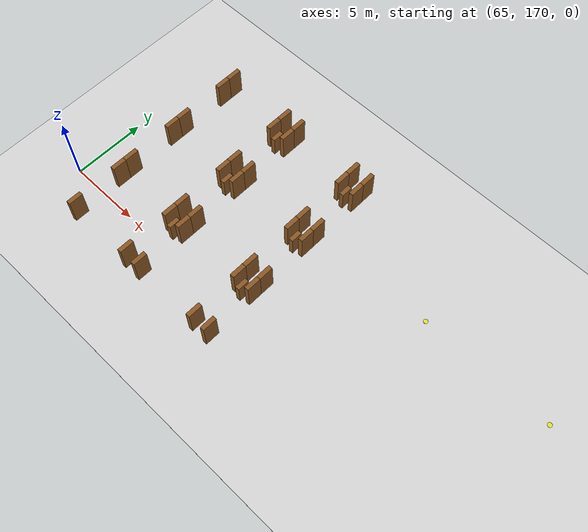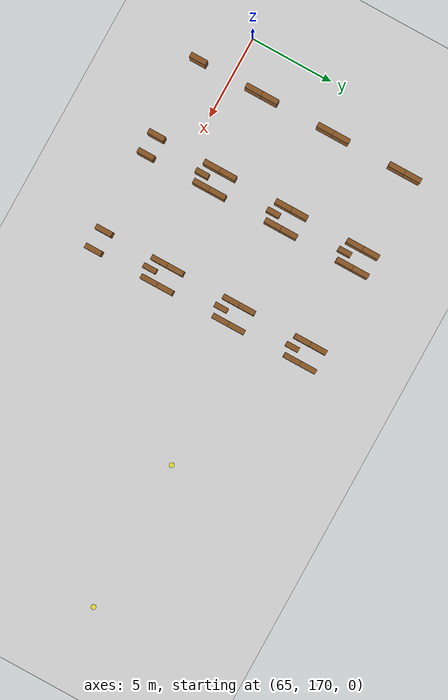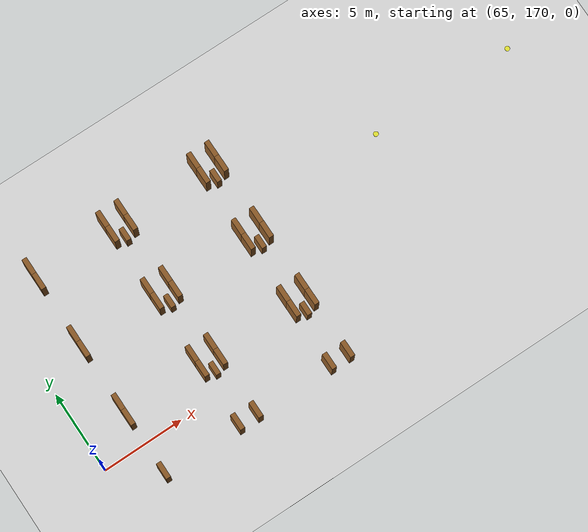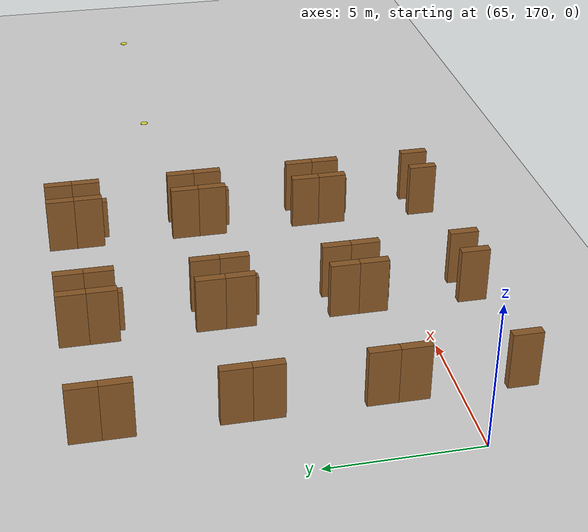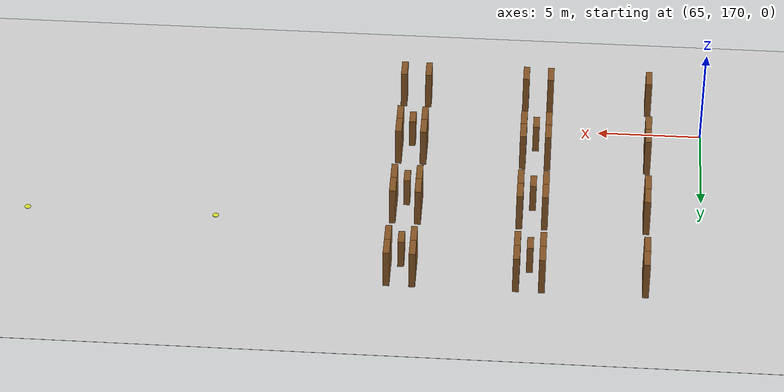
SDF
<sdf version="1.9">
 <world name="realistic_warehouse_150x200m">
  <model name="ground_plane">
   <static>true</static>
   <pose>68.5 102.0 0 0 0 0</pose>
   <link name="ground_link">
    <visual name="ground_visual">
     <geometry><box><size>127.0 194.0 0.01</size></box></geometry>
     <material><ambient>0.85 0.85 0.85 1.0</ambient><diffuse>0.85 0.85 0.85 1.0</diffuse></material>
    </visual>
    <collision name="ground_visual_collision">
     <geometry><box><size>127.0 194.0 0.01</size></box></geometry>
    </collision>
    <collision name="ground_collision">
     <geometry><plane><normal>0 0 1</normal><size>127.0 194.0</size></plane></geometry>
    </collision>
   </link>
  </model>
  <model name="rack_Zone_B_A2_S1_329">
   <static>true</static>
   <pose>67.6 168.0 1.0 0 0 0</pose>
   <link name="rack_Zone_B_A2_S1_329_link">
    <visual name="rack_Zone_B_A2_S1_329_vis">
     <geometry><box><size>0.3 1.0 2.0</size></box></geometry>
     <material><ambient>0.55 0.35 0.15 1.0</ambient><diffuse>0.55 0.35 0.15 1.0</diffuse></material>
    </visual>
    <collision name="rack_Zone_B_A2_S1_329_vis_collision">
     <geometry><box><size>0.3 1.0 2.0</size></box></geometry>
    </collision>
   </link>
  </model>
  <model name="rack_Zone_B_A2_S2_333">
   <static>true</static>
   <pose>67.6 171.5 1.0 0 0 0</pose>
   <link name="rack_Zone_B_A2_S2_333_link">
    <visual name="rack_Zone_B_A2_S2_333_vis">
     <geometry><box><size>0.3 1.0 2.0</size></box></geometry>
     <material><ambient>0.55 0.35 0.15 1.0</ambient><diffuse>0.55 0.35 0.15 1.0</diffuse></material>
    </visual>
    <collision name="rack_Zone_B_A2_S2_333_vis_collision">
     <geometry><box><size>0.3 1.0 2.0</size></box></geometry>
    </collision>
   </link>
  </model>
  <model name="rack_Zone_B_A2_S2_334">
   <static>true</static>
   <pose>67.6 172.5 1.0 0 0 0</pose>
   <link name="rack_Zone_B_A2_S2_334_link">
    <visual name="rack_Zone_B_A2_S2_334_vis">
     <geometry><box><size>0.3 1.0 2.0</size></box></geometry>
     <material><ambient>0.55 0.35 0.15 1.0</ambient><diffuse>0.55 0.35 0.15 1.0</diffuse></material>
    </visual>
    <collision name="rack_Zone_B_A2_S2_334_vis_collision">
     <geometry><box><size>0.3 1.0 2.0</size></box></geometry>
    </collision>
   </link>
  </model>
  <model name="rack_Zone_B_A2_S3_338">
   <static>true</static>
   <pose>67.6 176.0 1.0 0 0 0</pose>
   <link name="rack_Zone_B_A2_S3_338_link">
    <visual name="rack_Zone_B_A2_S3_338_vis">
     <geometry><box><size>0.3 1.0 2.0</size></box></geometry>
     <material><ambient>0.55 0.35 0.15 1.0</ambient><diffuse>0.55 0.35 0.15 1.0</diffuse></material>
    </visual>
    <collision name="rack_Zone_B_A2_S3_338_vis_collision">
     <geometry><box><size>0.3 1.0 2.0</size></box></geometry>
    </collision>
   </link>
  </model>
  <model name="rack_Zone_B_A2_S3_339">
   <static>true</static>
   <pose>67.6 177.0 1.0 0 0 0</pose>
   <link name="rack_Zone_B_A2_S3_339_link">
    <visual name="rack_Zone_B_A2_S3_339_vis">
     <geometry><box><size>0.3 1.0 2.0</size></box></geometry>
     <material><ambient>0.55 0.35 0.15 1.0</ambient><diffuse>0.55 0.35 0.15 1.0</diffuse></material>
    </visual>
    <collision name="rack_Zone_B_A2_S3_339_vis_collision">
     <geometry><box><size>0.3 1.0 2.0</size></box></geometry>
    </collision>
   </link>
  </model>
  <model name="rack_Zone_B_A2_S4_343">
   <static>true</static>
   <pose>67.6 180.5 1.0 0 0 0</pose>
   <link name="rack_Zone_B_A2_S4_343_link">
    <visual name="rack_Zone_B_A2_S4_343_vis">
     <geometry><box><size>0.3 1.0 2.0</size></box></geometry>
     <material><ambient>0.55 0.35 0.15 1.0</ambient><diffuse>0.55 0.35 0.15 1.0</diffuse></material>
    </visual>
    <collision name="rack_Zone_B_A2_S4_343_vis_collision">
     <geometry><box><size>0.3 1.0 2.0</size></box></geometry>
    </collision>
   </link>
  </model>
  <model name="rack_Zone_B_A2_S4_344">
   <static>true</static>
   <pose>67.6 181.5 1.0 0 0 0</pose>
   <link name="rack_Zone_B_A2_S4_344_link">
    <visual name="rack_Zone_B_A2_S4_344_vis">
     <geometry><box><size>0.3 1.0 2.0</size></box></geometry>
     <material><ambient>0.55 0.35 0.15 1.0</ambient><diffuse>0.55 0.35 0.15 1.0</diffuse></material>
    </visual>
    <collision name="rack_Zone_B_A2_S4_344_vis_collision">
     <geometry><box><size>0.3 1.0 2.0</size></box></geometry>
    </collision>
   </link>
  </model>
  <model name="rack_Zone_B_A3_S1_371">
   <static>true</static>
   <pose>72.4 168.0 1.0 0 0 0</pose>
   <link name="rack_Zone_B_A3_S1_371_link">
    <visual name="rack_Zone_B_A3_S1_371_vis">
     <geometry><box><size>0.3 1.0 2.0</size></box></geometry>
     <material><ambient>0.55 0.35 0.15 1.0</ambient><diffuse>0.55 0.35 0.15 1.0</diffuse></material>
    </visual>
    <collision name="rack_Zone_B_A3_S1_371_vis_collision">
     <geometry><box><size>0.3 1.0 2.0</size></box></geometry>
    </collision>
   </link>
  </model>
  <model name="rack_Zone_B_A3_S1_373">
   <static>true</static>
   <pose>73.6 168.0 1.0 0 0 0</pose>
   <link name="rack_Zone_B_A3_S1_373_link">
    <visual name="rack_Zone_B_A3_S1_373_vis">
     <geometry><box><size>0.3 1.0 2.0</size></box></geometry>
     <material><ambient>0.55 0.35 0.15 1.0</ambient><diffuse>0.55 0.35 0.15 1.0</diffuse></material>
    </visual>
    <collision name="rack_Zone_B_A3_S1_373_vis_collision">
     <geometry><box><size>0.3 1.0 2.0</size></box></geometry>
    </collision>
   </link>
  </model>
  <model name="rack_Zone_B_A3_S2_375">
   <static>true</static>
   <pose>72.4 171.5 1.0 0 0 0</pose>
   <link name="rack_Zone_B_A3_S2_375_link">
    <visual name="rack_Zone_B_A3_S2_375_vis">
     <geometry><box><size>0.3 1.0 2.0</size></box></geometry>
     <material><ambient>0.55 0.35 0.15 1.0</ambient><diffuse>0.55 0.35 0.15 1.0</diffuse></material>
    </visual>
    <collision name="rack_Zone_B_A3_S2_375_vis_collision">
     <geometry><box><size>0.3 1.0 2.0</size></box></geometry>
    </collision>
   </link>
  </model>
  <model name="rack_Zone_B_A3_S2_376">
   <static>true</static>
   <pose>72.4 172.5 1.0 0 0 0</pose>
   <link name="rack_Zone_B_A3_S2_376_link">
    <visual name="rack_Zone_B_A3_S2_376_vis">
     <geometry><box><size>0.3 1.0 2.0</size></box></geometry>
     <material><ambient>0.55 0.35 0.15 1.0</ambient><diffuse>0.55 0.35 0.15 1.0</diffuse></material>
    </visual>
    <collision name="rack_Zone_B_A3_S2_376_vis_collision">
     <geometry><box><size>0.3 1.0 2.0</size></box></geometry>
    </collision>
   </link>
  </model>
  <model name="rack_Zone_B_A3_S2_377">
   <static>true</static>
   <pose>73.6 171.5 1.0 0 0 0</pose>
   <link name="rack_Zone_B_A3_S2_377_link">
    <visual name="rack_Zone_B_A3_S2_377_vis">
     <geometry><box><size>0.3 1.0 2.0</size></box></geometry>
     <material><ambient>0.55 0.35 0.15 1.0</ambient><diffuse>0.55 0.35 0.15 1.0</diffuse></material>
    </visual>
    <collision name="rack_Zone_B_A3_S2_377_vis_collision">
     <geometry><box><size>0.3 1.0 2.0</size></box></geometry>
    </collision>
   </link>
  </model>
  <model name="rack_Zone_B_A3_S2_378">
   <static>true</static>
   <pose>73.6 172.5 1.0 0 0 0</pose>
   <link name="rack_Zone_B_A3_S2_378_link">
    <visual name="rack_Zone_B_A3_S2_378_vis">
     <geometry><box><size>0.3 1.0 2.0</size></box></geometry>
     <material><ambient>0.55 0.35 0.15 1.0</ambient><diffuse>0.55 0.35 0.15 1.0</diffuse></material>
    </visual>
    <collision name="rack_Zone_B_A3_S2_378_vis_collision">
     <geometry><box><size>0.3 1.0 2.0</size></box></geometry>
    </collision>
   </link>
  </model>
  <model name="rack_Zone_B_A3_S2_379">
   <static>true</static>
   <pose>73.0 171.2 0.75 0 0 0</pose>
   <link name="rack_Zone_B_A3_S2_379_link">
    <visual name="rack_Zone_B_A3_S2_379_vis">
     <geometry><box><size>0.3 0.8 1.5</size></box></geometry>
     <material><ambient>0.55 0.35 0.15 1.0</ambient><diffuse>0.55 0.35 0.15 1.0</diffuse></material>
    </visual>
    <collision name="rack_Zone_B_A3_S2_379_vis_collision">
     <geometry><box><size>0.3 0.8 1.5</size></box></geometry>
    </collision>
   </link>
  </model>
  <model name="rack_Zone_B_A3_S3_380">
   <static>true</static>
   <pose>72.4 176.0 1.0 0 0 0</pose>
   <link name="rack_Zone_B_A3_S3_380_link">
    <visual name="rack_Zone_B_A3_S3_380_vis">
     <geometry><box><size>0.3 1.0 2.0</size></box></geometry>
     <material><ambient>0.55 0.35 0.15 1.0</ambient><diffuse>0.55 0.35 0.15 1.0</diffuse></material>
    </visual>
    <collision name="rack_Zone_B_A3_S3_380_vis_collision">
     <geometry><box><size>0.3 1.0 2.0</size></box></geometry>
    </collision>
   </link>
  </model>
  <model name="rack_Zone_B_A3_S3_381">
   <static>true</static>
   <pose>72.4 177.0 1.0 0 0 0</pose>
   <link name="rack_Zone_B_A3_S3_381_link">
    <visual name="rack_Zone_B_A3_S3_381_vis">
     <geometry><box><size>0.3 1.0 2.0</size></box></geometry>
     <material><ambient>0.55 0.35 0.15 1.0</ambient><diffuse>0.55 0.35 0.15 1.0</diffuse></material>
    </visual>
    <collision name="rack_Zone_B_A3_S3_381_vis_collision">
     <geometry><box><size>0.3 1.0 2.0</size></box></geometry>
    </collision>
   </link>
  </model>
  <model name="rack_Zone_B_A3_S3_382">
   <static>true</static>
   <pose>73.6 176.0 1.0 0 0 0</pose>
   <link name="rack_Zone_B_A3_S3_382_link">
    <visual name="rack_Zone_B_A3_S3_382_vis">
     <geometry><box><size>0.3 1.0 2.0</size></box></geometry>
     <material><ambient>0.55 0.35 0.15 1.0</ambient><diffuse>0.55 0.35 0.15 1.0</diffuse></material>
    </visual>
    <collision name="rack_Zone_B_A3_S3_382_vis_collision">
     <geometry><box><size>0.3 1.0 2.0</size></box></geometry>
    </collision>
   </link>
  </model>
  <model name="rack_Zone_B_A3_S3_383">
   <static>true</static>
   <pose>73.6 177.0 1.0 0 0 0</pose>
   <link name="rack_Zone_B_A3_S3_383_link">
    <visual name="rack_Zone_B_A3_S3_383_vis">
     <geometry><box><size>0.3 1.0 2.0</size></box></geometry>
     <material><ambient>0.55 0.35 0.15 1.0</ambient><diffuse>0.55 0.35 0.15 1.0</diffuse></material>
    </visual>
    <collision name="rack_Zone_B_A3_S3_383_vis_collision">
     <geometry><box><size>0.3 1.0 2.0</size></box></geometry>
    </collision>
   </link>
  </model>
  <model name="rack_Zone_B_A3_S3_384">
   <static>true</static>
   <pose>73.0 175.7 0.75 0 0 0</pose>
   <link name="rack_Zone_B_A3_S3_384_link">
    <visual name="rack_Zone_B_A3_S3_384_vis">
     <geometry><box><size>0.3 0.8 1.5</size></box></geometry>
     <material><ambient>0.55 0.35 0.15 1.0</ambient><diffuse>0.55 0.35 0.15 1.0</diffuse></material>
    </visual>
    <collision name="rack_Zone_B_A3_S3_384_vis_collision">
     <geometry><box><size>0.3 0.8 1.5</size></box></geometry>
    </collision>
   </link>
  </model>
  <model name="rack_Zone_B_A3_S4_385">
   <static>true</static>
   <pose>72.4 180.5 1.0 0 0 0</pose>
   <link name="rack_Zone_B_A3_S4_385_link">
    <visual name="rack_Zone_B_A3_S4_385_vis">
     <geometry><box><size>0.3 1.0 2.0</size></box></geometry>
     <material><ambient>0.55 0.35 0.15 1.0</ambient><diffuse>0.55 0.35 0.15 1.0</diffuse></material>
    </visual>
    <collision name="rack_Zone_B_A3_S4_385_vis_collision">
     <geometry><box><size>0.3 1.0 2.0</size></box></geometry>
    </collision>
   </link>
  </model>
  <model name="rack_Zone_B_A3_S4_386">
   <static>true</static>
   <pose>72.4 181.5 1.0 0 0 0</pose>
   <link name="rack_Zone_B_A3_S4_386_link">
    <visual name="rack_Zone_B_A3_S4_386_vis">
     <geometry><box><size>0.3 1.0 2.0</size></box></geometry>
     <material><ambient>0.55 0.35 0.15 1.0</ambient><diffuse>0.55 0.35 0.15 1.0</diffuse></material>
    </visual>
    <collision name="rack_Zone_B_A3_S4_386_vis_collision">
     <geometry><box><size>0.3 1.0 2.0</size></box></geometry>
    </collision>
   </link>
  </model>
  <model name="rack_Zone_B_A3_S4_387">
   <static>true</static>
   <pose>73.6 180.5 1.0 0 0 0</pose>
   <link name="rack_Zone_B_A3_S4_387_link">
    <visual name="rack_Zone_B_A3_S4_387_vis">
     <geometry><box><size>0.3 1.0 2.0</size></box></geometry>
     <material><ambient>0.55 0.35 0.15 1.0</ambient><diffuse>0.55 0.35 0.15 1.0</diffuse></material>
    </visual>
    <collision name="rack_Zone_B_A3_S4_387_vis_collision">
     <geometry><box><size>0.3 1.0 2.0</size></box></geometry>
    </collision>
   </link>
  </model>
  <model name="rack_Zone_B_A3_S4_388">
   <static>true</static>
   <pose>73.6 181.5 1.0 0 0 0</pose>
   <link name="rack_Zone_B_A3_S4_388_link">
    <visual name="rack_Zone_B_A3_S4_388_vis">
     <geometry><box><size>0.3 1.0 2.0</size></box></geometry>
     <material><ambient>0.55 0.35 0.15 1.0</ambient><diffuse>0.55 0.35 0.15 1.0</diffuse></material>
    </visual>
    <collision name="rack_Zone_B_A3_S4_388_vis_collision">
     <geometry><box><size>0.3 1.0 2.0</size></box></geometry>
    </collision>
   </link>
  </model>
  <model name="rack_Zone_B_A3_S4_389">
   <static>true</static>
   <pose>73.0 180.2 0.75 0 0 0</pose>
   <link name="rack_Zone_B_A3_S4_389_link">
    <visual name="rack_Zone_B_A3_S4_389_vis">
     <geometry><box><size>0.3 0.8 1.5</size></box></geometry>
     <material><ambient>0.55 0.35 0.15 1.0</ambient><diffuse>0.55 0.35 0.15 1.0</diffuse></material>
    </visual>
    <collision name="rack_Zone_B_A3_S4_389_vis_collision">
     <geometry><box><size>0.3 0.8 1.5</size></box></geometry>
    </collision>
   </link>
  </model>
  <model name="rack_Zone_B_A4_S1_415">
   <static>true</static>
   <pose>78.4 168.0 1.0 0 0 0</pose>
   <link name="rack_Zone_B_A4_S1_415_link">
    <visual name="rack_Zone_B_A4_S1_415_vis">
     <geometry><box><size>0.3 1.0 2.0</size></box></geometry>
     <material><ambient>0.55 0.35 0.15 1.0</ambient><diffuse>0.55 0.35 0.15 1.0</diffuse></material>
    </visual>
    <collision name="rack_Zone_B_A4_S1_415_vis_collision">
     <geometry><box><size>0.3 1.0 2.0</size></box></geometry>
    </collision>
   </link>
  </model>
  <model name="rack_Zone_B_A4_S1_417">
   <static>true</static>
   <pose>79.6 168.0 1.0 0 0 0</pose>
   <link name="rack_Zone_B_A4_S1_417_link">
    <visual name="rack_Zone_B_A4_S1_417_vis">
     <geometry><box><size>0.3 1.0 2.0</size></box></geometry>
     <material><ambient>0.55 0.35 0.15 1.0</ambient><diffuse>0.55 0.35 0.15 1.0</diffuse></material>
    </visual>
    <collision name="rack_Zone_B_A4_S1_417_vis_collision">
     <geometry><box><size>0.3 1.0 2.0</size></box></geometry>
    </collision>
   </link>
  </model>
  <model name="rack_Zone_B_A4_S2_419">
   <static>true</static>
   <pose>78.4 171.5 1.0 0 0 0</pose>
   <link name="rack_Zone_B_A4_S2_419_link">
    <visual name="rack_Zone_B_A4_S2_419_vis">
     <geometry><box><size>0.3 1.0 2.0</size></box></geometry>
     <material><ambient>0.55 0.35 0.15 1.0</ambient><diffuse>0.55 0.35 0.15 1.0</diffuse></material>
    </visual>
    <collision name="rack_Zone_B_A4_S2_419_vis_collision">
     <geometry><box><size>0.3 1.0 2.0</size></box></geometry>
    </collision>
   </link>
  </model>
  <model name="rack_Zone_B_A4_S2_420">
   <static>true</static>
   <pose>78.4 172.5 1.0 0 0 0</pose>
   <link name="rack_Zone_B_A4_S2_420_link">
    <visual name="rack_Zone_B_A4_S2_420_vis">
     <geometry><box><size>0.3 1.0 2.0</size></box></geometry>
     <material><ambient>0.55 0.35 0.15 1.0</ambient><diffuse>0.55 0.35 0.15 1.0</diffuse></material>
    </visual>
    <collision name="rack_Zone_B_A4_S2_420_vis_collision">
     <geometry><box><size>0.3 1.0 2.0</size></box></geometry>
    </collision>
   </link>
  </model>
  <model name="rack_Zone_B_A4_S2_421">
   <static>true</static>
   <pose>79.6 171.5 1.0 0 0 0</pose>
   <link name="rack_Zone_B_A4_S2_421_link">
    <visual name="rack_Zone_B_A4_S2_421_vis">
     <geometry><box><size>0.3 1.0 2.0</size></box></geometry>
     <material><ambient>0.55 0.35 0.15 1.0</ambient><diffuse>0.55 0.35 0.15 1.0</diffuse></material>
    </visual>
    <collision name="rack_Zone_B_A4_S2_421_vis_collision">
     <geometry><box><size>0.3 1.0 2.0</size></box></geometry>
    </collision>
   </link>
  </model>
  <model name="rack_Zone_B_A4_S2_422">
   <static>true</static>
   <pose>79.6 172.5 1.0 0 0 0</pose>
   <link name="rack_Zone_B_A4_S2_422_link">
    <visual name="rack_Zone_B_A4_S2_422_vis">
     <geometry><box><size>0.3 1.0 2.0</size></box></geometry>
     <material><ambient>0.55 0.35 0.15 1.0</ambient><diffuse>0.55 0.35 0.15 1.0</diffuse></material>
    </visual>
    <collision name="rack_Zone_B_A4_S2_422_vis_collision">
     <geometry><box><size>0.3 1.0 2.0</size></box></geometry>
    </collision>
   </link>
  </model>
  <model name="rack_Zone_B_A4_S2_423">
   <static>true</static>
   <pose>79.0 171.2 0.75 0 0 0</pose>
   <link name="rack_Zone_B_A4_S2_423_link">
    <visual name="rack_Zone_B_A4_S2_423_vis">
     <geometry><box><size>0.3 0.8 1.5</size></box></geometry>
     <material><ambient>0.55 0.35 0.15 1.0</ambient><diffuse>0.55 0.35 0.15 1.0</diffuse></material>
    </visual>
    <collision name="rack_Zone_B_A4_S2_423_vis_collision">
     <geometry><box><size>0.3 0.8 1.5</size></box></geometry>
    </collision>
   </link>
  </model>
  <model name="rack_Zone_B_A4_S3_424">
   <static>true</static>
   <pose>78.4 176.0 1.0 0 0 0</pose>
   <link name="rack_Zone_B_A4_S3_424_link">
    <visual name="rack_Zone_B_A4_S3_424_vis">
     <geometry><box><size>0.3 1.0 2.0</size></box></geometry>
     <material><ambient>0.55 0.35 0.15 1.0</ambient><diffuse>0.55 0.35 0.15 1.0</diffuse></material>
    </visual>
    <collision name="rack_Zone_B_A4_S3_424_vis_collision">
     <geometry><box><size>0.3 1.0 2.0</size></box></geometry>
    </collision>
   </link>
  </model>
  <model name="rack_Zone_B_A4_S3_425">
   <static>true</static>
   <pose>78.4 177.0 1.0 0 0 0</pose>
   <link name="rack_Zone_B_A4_S3_425_link">
    <visual name="rack_Zone_B_A4_S3_425_vis">
     <geometry><box><size>0.3 1.0 2.0</size></box></geometry>
     <material><ambient>0.55 0.35 0.15 1.0</ambient><diffuse>0.55 0.35 0.15 1.0</diffuse></material>
    </visual>
    <collision name="rack_Zone_B_A4_S3_425_vis_collision">
     <geometry><box><size>0.3 1.0 2.0</size></box></geometry>
    </collision>
   </link>
  </model>
  <model name="rack_Zone_B_A4_S3_426">
   <static>true</static>
   <pose>79.6 176.0 1.0 0 0 0</pose>
   <link name="rack_Zone_B_A4_S3_426_link">
    <visual name="rack_Zone_B_A4_S3_426_vis">
     <geometry><box><size>0.3 1.0 2.0</size></box></geometry>
     <material><ambient>0.55 0.35 0.15 1.0</ambient><diffuse>0.55 0.35 0.15 1.0</diffuse></material>
    </visual>
    <collision name="rack_Zone_B_A4_S3_426_vis_collision">
     <geometry><box><size>0.3 1.0 2.0</size></box></geometry>
    </collision>
   </link>
  </model>
  <model name="rack_Zone_B_A4_S3_427">
   <static>true</static>
   <pose>79.6 177.0 1.0 0 0 0</pose>
   <link name="rack_Zone_B_A4_S3_427_link">
    <visual name="rack_Zone_B_A4_S3_427_vis">
     <geometry><box><size>0.3 1.0 2.0</size></box></geometry>
     <material><ambient>0.55 0.35 0.15 1.0</ambient><diffuse>0.55 0.35 0.15 1.0</diffuse></material>
    </visual>
    <collision name="rack_Zone_B_A4_S3_427_vis_collision">
     <geometry><box><size>0.3 1.0 2.0</size></box></geometry>
    </collision>
   </link>
  </model>
  <model name="rack_Zone_B_A4_S3_428">
   <static>true</static>
   <pose>79.0 175.7 0.75 0 0 0</pose>
   <link name="rack_Zone_B_A4_S3_428_link">
    <visual name="rack_Zone_B_A4_S3_428_vis">
     <geometry><box><size>0.3 0.8 1.5</size></box></geometry>
     <material><ambient>0.55 0.35 0.15 1.0</ambient><diffuse>0.55 0.35 0.15 1.0</diffuse></material>
    </visual>
    <collision name="rack_Zone_B_A4_S3_428_vis_collision">
     <geometry><box><size>0.3 0.8 1.5</size></box></geometry>
    </collision>
   </link>
  </model>
  <model name="rack_Zone_B_A4_S4_429">
   <static>true</static>
   <pose>78.4 180.5 1.0 0 0 0</pose>
   <link name="rack_Zone_B_A4_S4_429_link">
    <visual name="rack_Zone_B_A4_S4_429_vis">
     <geometry><box><size>0.3 1.0 2.0</size></box></geometry>
     <material><ambient>0.55 0.35 0.15 1.0</ambient><diffuse>0.55 0.35 0.15 1.0</diffuse></material>
    </visual>
    <collision name="rack_Zone_B_A4_S4_429_vis_collision">
     <geometry><box><size>0.3 1.0 2.0</size></box></geometry>
    </collision>
   </link>
  </model>
  <model name="rack_Zone_B_A4_S4_430">
   <static>true</static>
   <pose>78.4 181.5 1.0 0 0 0</pose>
   <link name="rack_Zone_B_A4_S4_430_link">
    <visual name="rack_Zone_B_A4_S4_430_vis">
     <geometry><box><size>0.3 1.0 2.0</size></box></geometry>
     <material><ambient>0.55 0.35 0.15 1.0</ambient><diffuse>0.55 0.35 0.15 1.0</diffuse></material>
    </visual>
    <collision name="rack_Zone_B_A4_S4_430_vis_collision">
     <geometry><box><size>0.3 1.0 2.0</size></box></geometry>
    </collision>
   </link>
  </model>
  <model name="rack_Zone_B_A4_S4_431">
   <static>true</static>
   <pose>79.6 180.5 1.0 0 0 0</pose>
   <link name="rack_Zone_B_A4_S4_431_link">
    <visual name="rack_Zone_B_A4_S4_431_vis">
     <geometry><box><size>0.3 1.0 2.0</size></box></geometry>
     <material><ambient>0.55 0.35 0.15 1.0</ambient><diffuse>0.55 0.35 0.15 1.0</diffuse></material>
    </visual>
    <collision name="rack_Zone_B_A4_S4_431_vis_collision">
     <geometry><box><size>0.3 1.0 2.0</size></box></geometry>
    </collision>
   </link>
  </model>
  <model name="rack_Zone_B_A4_S4_432">
   <static>true</static>
   <pose>79.6 181.5 1.0 0 0 0</pose>
   <link name="rack_Zone_B_A4_S4_432_link">
    <visual name="rack_Zone_B_A4_S4_432_vis">
     <geometry><box><size>0.3 1.0 2.0</size></box></geometry>
     <material><ambient>0.55 0.35 0.15 1.0</ambient><diffuse>0.55 0.35 0.15 1.0</diffuse></material>
    </visual>
    <collision name="rack_Zone_B_A4_S4_432_vis_collision">
     <geometry><box><size>0.3 1.0 2.0</size></box></geometry>
    </collision>
   </link>
  </model>
  <model name="rack_Zone_B_A4_S4_433">
   <static>true</static>
   <pose>79.0 180.2 0.75 0 0 0</pose>
   <link name="rack_Zone_B_A4_S4_433_link">
    <visual name="rack_Zone_B_A4_S4_433_vis">
     <geometry><box><size>0.3 0.8 1.5</size></box></geometry>
     <material><ambient>0.55 0.35 0.15 1.0</ambient><diffuse>0.55 0.35 0.15 1.0</diffuse></material>
    </visual>
    <collision name="rack_Zone_B_A4_S4_433_vis_collision">
     <geometry><box><size>0.3 0.8 1.5</size></box></geometry>
    </collision>
   </link>
  </model>
  <model name="cross_Zone_B_corridor_E_1610">
   <static>true</static>
   <pose>88.0 177.5 0.01 0 0 0</pose>
   <link name="cross_Zone_B_corridor_E_1610_link">
    <visual name="cross_Zone_B_corridor_E_1610_vis">
     <geometry><cylinder><radius>0.15</radius><length>0.02</length></cylinder></geometry>
     <material><ambient>0.9 0.9 0.2 1.0</ambient><diffuse>0.9 0.9 0.2 1.0</diffuse></material>
    </visual>
    <collision name="cross_Zone_B_corridor_E_1610_vis_collision">
     <geometry><cylinder><radius>0.15</radius><length>0.02</length></cylinder></geometry>
    </collision>
   </link>
  </model>
  <model name="cross_Zone_C_corridor_W_1611">
   <static>true</static>
   <pose>97.0 177.5 0.01 0 0 0</pose>
   <link name="cross_Zone_C_corridor_W_1611_link">
    <visual name="cross_Zone_C_corridor_W_1611_vis">
     <geometry><cylinder><radius>0.15</radius><length>0.02</length></cylinder></geometry>
     <material><ambient>0.9 0.9 0.2 1.0</ambient><diffuse>0.9 0.9 0.2 1.0</diffuse></material>
    </visual>
    <collision name="cross_Zone_C_corridor_W_1611_vis_collision">
     <geometry><cylinder><radius>0.15</radius><length>0.02</length></cylinder></geometry>
    </collision>
   </link>
  </model>
 </world>
</sdf>
